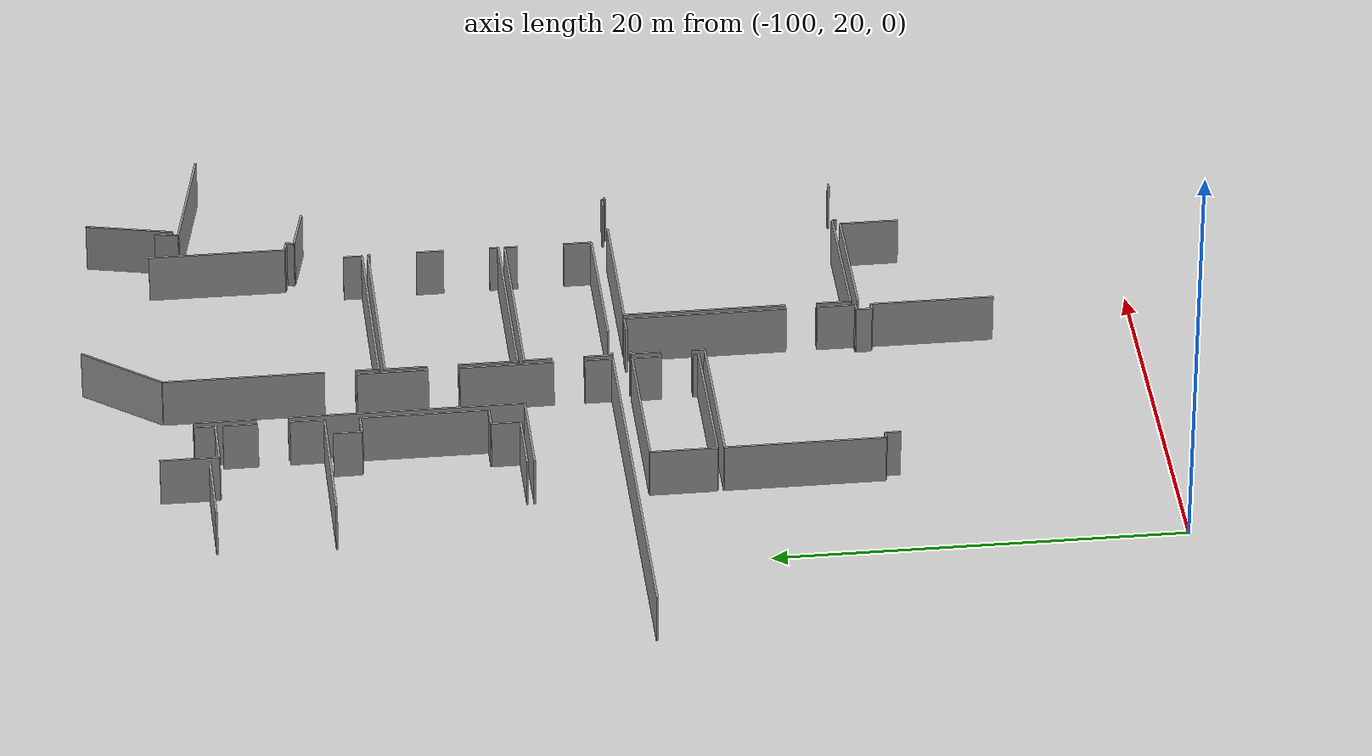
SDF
<sdf version="1.6">
 <world name="default">
  <model name="ground_plane">
   <static>1</static>
   <link name="link">
    <collision name="collision">
     <geometry><plane><normal>0 0 1</normal><size>100 100</size></plane></geometry>
     <surface><friction><ode><mu>100</mu><mu2>50</mu2></ode></friction></surface>
    </collision>
    <visual name="visual">
     <cast_shadows>0</cast_shadows>
     <geometry><plane><normal>0 0 1</normal><size>100 100</size></plane></geometry>
     <material>
      <script><uri>file://media/materials/scripts/gazebo.material</uri><name>Gazebo/Grey</name></script>
     </material>
    </visual>
   </link>
  </model>
  <model name="0510045922_A-40">
   <static>1</static>
   <link name="Wall_399">
    <collision name="Wall_399_Collision">
     <geometry><box><size>1.39289572345 0.1 2.5</size></box></geometry>
     <pose>0.696447861727 0 1.25 0 0 0</pose>
    </collision>
    <visual name="Wall_399_Visual">
     <pose>0.696447861727 0 1.25 0 0 0</pose>
     <geometry><box><size>1.39289572345 0.1 2.5</size></box></geometry>
     <material>
      <script><uri>file://media/materials/scripts/gazebo.material</uri><name>Gazebo/Grey</name></script>
      <ambient>1 1 1 1</ambient>
     </material>
    </visual>
    <pose>43.1490627184 -41.1134015378 0 0 0 -1.57079632679</pose>
   </link>
   <link name="Wall_400">
    <collision name="Wall_400_Collision">
     <geometry><box><size>1.17786109169 0.1 2.5</size></box></geometry>
     <pose>0.588930545847 0 1.25 0 0 0</pose>
    </collision>
    <visual name="Wall_400_Visual">
     <pose>0.588930545847 0 1.25 0 0 0</pose>
     <geometry><box><size>1.17786109169 0.1 2.5</size></box></geometry>
     <material>
      <script><uri>file://media/materials/scripts/gazebo.material</uri><name>Gazebo/Grey</name></script>
      <ambient>1 1 1 1</ambient>
     </material>
    </visual>
    <pose>43.1490627184 -42.5062972612 0 0 0 0.0</pose>
   </link>
   <link name="Wall_401">
    <collision name="Wall_401_Collision">
     <geometry><box><size>6.21312829637 0.1 2.5</size></box></geometry>
     <pose>3.10656414819 0 1.25 0 0 0</pose>
    </collision>
    <visual name="Wall_401_Visual">
     <pose>3.10656414819 0 1.25 0 0 0</pose>
     <geometry><box><size>6.21312829637 0.1 2.5</size></box></geometry>
     <material>
      <script><uri>file://media/materials/scripts/gazebo.material</uri><name>Gazebo/Grey</name></script>
      <ambient>1 1 1 1</ambient>
     </material>
    </visual>
    <pose>44.3269238101 -42.5062972612 0 0 0 -1.57079632679</pose>
   </link>
   <link name="Wall_402">
    <collision name="Wall_402_Collision">
     <geometry><box><size>1.15905191587 0.1 2.5</size></box></geometry>
     <pose>0.579525957934 0 1.25 0 0 0</pose>
    </collision>
    <visual name="Wall_402_Visual">
     <pose>0.579525957934 0 1.25 0 0 0</pose>
     <geometry><box><size>1.15905191587 0.1 2.5</size></box></geometry>
     <material>
      <script><uri>file://media/materials/scripts/gazebo.material</uri><name>Gazebo/Grey</name></script>
      <ambient>1 1 1 1</ambient>
     </material>
    </visual>
    <pose>44.3269238101 -48.7194255576 0 0 0 3.14159265359</pose>
   </link>
   <link name="Wall_403">
    <collision name="Wall_403_Collision">
     <geometry><box><size>1.41526339201 0.1 2.5</size></box></geometry>
     <pose>0.707631696003 0 1.25 0 0 0</pose>
    </collision>
    <visual name="Wall_403_Visual">
     <pose>0.707631696003 0 1.25 0 0 0</pose>
     <geometry><box><size>1.41526339201 0.1 2.5</size></box></geometry>
     <material>
      <script><uri>file://media/materials/scripts/gazebo.material</uri><name>Gazebo/Grey</name></script>
      <ambient>1 1 1 1</ambient>
     </material>
    </visual>
    <pose>43.1678718943 -48.7194255576 0 0 0 -1.57079632679</pose>
   </link>
   <link name="Wall_404">
    <collision name="Wall_404_Collision">
     <geometry><box><size>3.36760500731 0.1 2.5</size></box></geometry>
     <pose>1.68380250365 0 1.25 0 0 0</pose>
    </collision>
    <visual name="Wall_404_Visual">
     <pose>1.68380250365 0 1.25 0 0 0</pose>
     <geometry><box><size>3.36760500731 0.1 2.5</size></box></geometry>
     <material>
      <script><uri>file://media/materials/scripts/gazebo.material</uri><name>Gazebo/Grey</name></script>
      <ambient>1 1 1 1</ambient>
     </material>
    </visual>
    <pose>43.1678718943 -50.1346889496 0 0 0 3.14159265359</pose>
   </link>
   <link name="Wall_406">
    <collision name="Wall_406_Collision">
     <geometry><box><size>9.95208743725 0.1 2.5</size></box></geometry>
     <pose>4.97604371862 0 1.25 0 0 0</pose>
    </collision>
    <visual name="Wall_406_Visual">
     <pose>4.97604371862 0 1.25 0 0 0</pose>
     <geometry><box><size>9.95208743725 0.1 2.5</size></box></geometry>
     <material>
      <script><uri>file://media/materials/scripts/gazebo.material</uri><name>Gazebo/Grey</name></script>
      <ambient>1 1 1 1</ambient>
     </material>
    </visual>
    <pose>48.3500540128 -50.7970769524 0 0 0 0.0</pose>
   </link>
   <link name="Wall_407">
    <collision name="Wall_407_Collision">
     <geometry><box><size>0.636970197623 0.1 2.5</size></box></geometry>
     <pose>0.318485098812 0 1.25 0 0 0</pose>
    </collision>
    <visual name="Wall_407_Visual">
     <pose>0.318485098812 0 1.25 0 0 0</pose>
     <geometry><box><size>0.636970197623 0.1 2.5</size></box></geometry>
     <material>
      <script><uri>file://media/materials/scripts/gazebo.material</uri><name>Gazebo/Grey</name></script>
      <ambient>1 1 1 1</ambient>
     </material>
    </visual>
    <pose>58.3021414501 -50.7970769524 0 0 0 -1.57079632679</pose>
   </link>
   <link name="Wall_408">
    <collision name="Wall_408_Collision">
     <geometry><box><size>1.38018682087 0.1 2.5</size></box></geometry>
     <pose>0.690093410434 0 1.25 0 0 0</pose>
    </collision>
    <visual name="Wall_408_Visual">
     <pose>0.690093410434 0 1.25 0 0 0</pose>
     <geometry><box><size>1.38018682087 0.1 2.5</size></box></geometry>
     <material>
      <script><uri>file://media/materials/scripts/gazebo.material</uri><name>Gazebo/Grey</name></script>
      <ambient>1 1 1 1</ambient>
     </material>
    </visual>
    <pose>58.3021414501 -53.7249539302 0 0 0 -1.57079632679</pose>
   </link>
   <link name="Wall_409">
    <collision name="Wall_409_Collision">
     <geometry><box><size>7.9415390481 0.1 2.5</size></box></geometry>
     <pose>3.97076952405 0 1.25 0 0 0</pose>
    </collision>
    <visual name="Wall_409_Visual">
     <pose>3.97076952405 0 1.25 0 0 0</pose>
     <geometry><box><size>7.9415390481 0.1 2.5</size></box></geometry>
     <material>
      <script><uri>file://media/materials/scripts/gazebo.material</uri><name>Gazebo/Grey</name></script>
      <ambient>1 1 1 1</ambient>
     </material>
    </visual>
    <pose>58.3021414501 -55.1051407511 0 0 0 3.14159265359</pose>
   </link>
   <link name="Wall_410">
    <collision name="Wall_410_Collision">
     <geometry><box><size>0.191141894897 0.1 2.5</size></box></geometry>
     <pose>0.0955709474487 0 1.25 0 0 0</pose>
    </collision>
    <visual name="Wall_410_Visual">
     <pose>0.0955709474487 0 1.25 0 0 0</pose>
     <geometry><box><size>0.191141894897 0.1 2.5</size></box></geometry>
     <material>
      <script><uri>file://media/materials/scripts/gazebo.material</uri><name>Gazebo/Grey</name></script>
      <ambient>1 1 1 1</ambient>
     </material>
    </visual>
    <pose>48.5516172079 -55.1051407511 0 0 0 3.14159265359</pose>
   </link>
   <link name="Wall_411">
    <collision name="Wall_411_Collision">
     <geometry><box><size>1.38044099892 0.1 2.5</size></box></geometry>
     <pose>0.69022049946 0 1.25 0 0 0</pose>
    </collision>
    <visual name="Wall_411_Visual">
     <pose>0.69022049946 0 1.25 0 0 0</pose>
     <geometry><box><size>1.38044099892 0.1 2.5</size></box></geometry>
     <material>
      <script><uri>file://media/materials/scripts/gazebo.material</uri><name>Gazebo/Grey</name></script>
      <ambient>1 1 1 1</ambient>
     </material>
    </visual>
    <pose>48.360475313 -55.1051407511 0 0 0 1.57079632679</pose>
   </link>
   <link name="Wall_412">
    <collision name="Wall_412_Collision">
     <geometry><box><size>1.38251370144 0.1 2.5</size></box></geometry>
     <pose>0.69125685072 0 1.25 0 0 0</pose>
    </collision>
    <visual name="Wall_412_Visual">
     <pose>0.69125685072 0 1.25 0 0 0</pose>
     <geometry><box><size>1.38251370144 0.1 2.5</size></box></geometry>
     <material>
      <script><uri>file://media/materials/scripts/gazebo.material</uri><name>Gazebo/Grey</name></script>
      <ambient>1 1 1 1</ambient>
     </material>
    </visual>
    <pose>48.360475313 -52.1795513757 0 0 0 1.57833433441</pose>
   </link>
   <link name="Wall_413">
    <collision name="Wall_413_Collision">
     <geometry><box><size>2.89813814577 0.1 2.5</size></box></geometry>
     <pose>1.44906907289 0 1.25 0 0 0</pose>
    </collision>
    <visual name="Wall_413_Visual">
     <pose>1.44906907289 0 1.25 0 0 0</pose>
     <geometry><box><size>2.89813814577 0.1 2.5</size></box></geometry>
     <material>
      <script><uri>file://media/materials/scripts/gazebo.material</uri><name>Gazebo/Grey</name></script>
      <ambient>1 1 1 1</ambient>
     </material>
    </visual>
    <pose>48.3129440173 -50.4913007562 0 0 0 1.57079632679</pose>
   </link>
   <link name="Wall_414">
    <collision name="Wall_414_Collision">
     <geometry><box><size>2.0545211921 0.1 2.5</size></box></geometry>
     <pose>1.02726059605 0 1.25 0 0 0</pose>
    </collision>
    <visual name="Wall_414_Visual">
     <pose>1.02726059605 0 1.25 0 0 0</pose>
     <geometry><box><size>2.0545211921 0.1 2.5</size></box></geometry>
     <material>
      <script><uri>file://media/materials/scripts/gazebo.material</uri><name>Gazebo/Grey</name></script>
      <ambient>1 1 1 1</ambient>
     </material>
    </visual>
    <pose>48.3129440173 -46.0772447099 0 0 0 1.57079632679</pose>
   </link>
   <link name="Wall_415">
    <collision name="Wall_415_Collision">
     <geometry><box><size>10.0082607867 0.1 2.5</size></box></geometry>
     <pose>5.00413039334 0 1.25 0 0 0</pose>
    </collision>
    <visual name="Wall_415_Visual">
     <pose>5.00413039334 0 1.25 0 0 0</pose>
     <geometry><box><size>10.0082607867 0.1 2.5</size></box></geometry>
     <material>
      <script><uri>file://media/materials/scripts/gazebo.material</uri><name>Gazebo/Grey</name></script>
      <ambient>1 1 1 1</ambient>
     </material>
    </visual>
    <pose>48.3129440173 -44.0227235178 0 0 0 0.0</pose>
   </link>
   <link name="Wall_416">
    <collision name="Wall_416_Collision">
     <geometry><box><size>0.124293067294 0.1 2.5</size></box></geometry>
     <pose>0.0621465336468 0 1.25 0 0 0</pose>
    </collision>
    <visual name="Wall_416_Visual">
     <pose>0.0621465336468 0 1.25 0 0 0</pose>
     <geometry><box><size>0.124293067294 0.1 2.5</size></box></geometry>
     <material>
      <script><uri>file://media/materials/scripts/gazebo.material</uri><name>Gazebo/Grey</name></script>
      <ambient>1 1 1 1</ambient>
     </material>
    </visual>
    <pose>58.321204804 -44.0227235178 0 0 0 -1.57079632679</pose>
   </link>
   <link name="Wall_417">
    <collision name="Wall_417_Collision">
     <geometry><box><size>1.35222723518 0.1 2.5</size></box></geometry>
     <pose>0.676113617589 0 1.25 0 0 0</pose>
    </collision>
    <visual name="Wall_417_Visual">
     <pose>0.676113617589 0 1.25 0 0 0</pose>
     <geometry><box><size>1.35222723518 0.1 2.5</size></box></geometry>
     <material>
      <script><uri>file://media/materials/scripts/gazebo.material</uri><name>Gazebo/Grey</name></script>
      <ambient>1 1 1 1</ambient>
     </material>
    </visual>
    <pose>58.321204804 -46.4097096016 0 0 0 -1.57079632679</pose>
   </link>
   <link name="Wall_418">
    <collision name="Wall_418_Collision">
     <geometry><box><size>0.439473851433 0.1 2.5</size></box></geometry>
     <pose>0.219736925716 0 1.25 0 0 0</pose>
    </collision>
    <visual name="Wall_418_Visual">
     <pose>0.219736925716 0 1.25 0 0 0</pose>
     <geometry><box><size>0.439473851433 0.1 2.5</size></box></geometry>
     <material>
      <script><uri>file://media/materials/scripts/gazebo.material</uri><name>Gazebo/Grey</name></script>
      <ambient>1 1 1 1</ambient>
     </material>
    </visual>
    <pose>58.321204804 -50.0436932071 0 0 0 -1.57079632679</pose>
   </link>
   <link name="Wall_419">
    <collision name="Wall_419_Collision">
     <geometry><box><size>10.0082640918 0.1 2.5</size></box></geometry>
     <pose>5.0041320459 0 1.25 0 0 0</pose>
    </collision>
    <visual name="Wall_419_Visual">
     <pose>5.0041320459 0 1.25 0 0 0</pose>
     <geometry><box><size>10.0082640918 0.1 2.5</size></box></geometry>
     <material>
      <script><uri>file://media/materials/scripts/gazebo.material</uri><name>Gazebo/Grey</name></script>
      <ambient>1 1 1 1</ambient>
     </material>
    </visual>
    <pose>58.321204804 -50.4831670585 0 0 0 -3.14077995536</pose>
   </link>
   <link name="Wall_420">
    <collision name="Wall_420_Collision">
     <geometry><box><size>1.15218910847 0.1 2.5</size></box></geometry>
     <pose>0.576094554235 0 1.25 0 0 0</pose>
    </collision>
    <visual name="Wall_420_Visual">
     <pose>0.576094554235 0 1.25 0 0 0</pose>
     <geometry><box><size>1.15218910847 0.1 2.5</size></box></geometry>
     <material>
      <script><uri>file://media/materials/scripts/gazebo.material</uri><name>Gazebo/Grey</name></script>
      <ambient>1 1 1 1</ambient>
     </material>
    </visual>
    <pose>48.3386160005 -43.7416025926 0 0 0 1.57079632679</pose>
   </link>
   <link name="Wall_421">
    <collision name="Wall_421_Collision">
     <geometry><box><size>7.84342632014 0.1 2.5</size></box></geometry>
     <pose>3.92171316007 0 1.25 0 0 0</pose>
    </collision>
    <visual name="Wall_421_Visual">
     <pose>3.92171316007 0 1.25 0 0 0</pose>
     <geometry><box><size>7.84342632014 0.1 2.5</size></box></geometry>
     <material>
      <script><uri>file://media/materials/scripts/gazebo.material</uri><name>Gazebo/Grey</name></script>
      <ambient>1 1 1 1</ambient>
     </material>
    </visual>
    <pose>48.3386160005 -41.0943381839 0 0 0 1.57079632679</pose>
   </link>
   <link name="Wall_422">
    <collision name="Wall_422_Collision">
     <geometry><box><size>4.70770745064 0.1 2.5</size></box></geometry>
     <pose>2.35385372532 0 1.25 0 0 0</pose>
    </collision>
    <visual name="Wall_422_Visual">
     <pose>2.35385372532 0 1.25 0 0 0</pose>
     <geometry><box><size>4.70770745064 0.1 2.5</size></box></geometry>
     <material>
      <script><uri>file://media/materials/scripts/gazebo.material</uri><name>Gazebo/Grey</name></script>
      <ambient>1 1 1 1</ambient>
     </material>
    </visual>
    <pose>48.3386160005 -33.2509118638 0 0 0 0.918613212032</pose>
   </link>
   <link name="Wall_428">
    <collision name="Wall_428_Collision">
     <geometry><box><size>0.939442079176 0.1 2.5</size></box></geometry>
     <pose>0.469721039588 0 1.25 0 0 0</pose>
    </collision>
    <visual name="Wall_428_Visual">
     <pose>0.469721039588 0 1.25 0 0 0</pose>
     <geometry><box><size>0.939442079176 0.1 2.5</size></box></geometry>
     <material>
      <script><uri>file://media/materials/scripts/gazebo.material</uri><name>Gazebo/Grey</name></script>
      <ambient>1 1 1 1</ambient>
     </material>
    </visual>
    <pose>58.277232001 -42.7955518841 0 0 0 -1.57079632679</pose>
   </link>
   <link name="Wall_429">
    <collision name="Wall_429_Collision">
     <geometry><box><size>9.93861819769 0.1 2.5</size></box></geometry>
     <pose>4.96930909885 0 1.25 0 0 0</pose>
    </collision>
    <visual name="Wall_429_Visual">
     <pose>4.96930909885 0 1.25 0 0 0</pose>
     <geometry><box><size>9.93861819769 0.1 2.5</size></box></geometry>
     <material>
      <script><uri>file://media/materials/scripts/gazebo.material</uri><name>Gazebo/Grey</name></script>
      <ambient>1 1 1 1</ambient>
     </material>
    </visual>
    <pose>58.277232001 -43.7349939633 0 0 0 -3.14092770906</pose>
   </link>
   <link name="Wall_438">
    <collision name="Wall_438_Collision">
     <geometry><box><size>1.69358835865 0.1 2.5</size></box></geometry>
     <pose>0.846794179323 0 1.25 0 0 0</pose>
    </collision>
    <visual name="Wall_438_Visual">
     <pose>0.846794179323 0 1.25 0 0 0</pose>
     <geometry><box><size>1.69358835865 0.1 2.5</size></box></geometry>
     <material>
      <script><uri>file://media/materials/scripts/gazebo.material</uri><name>Gazebo/Grey</name></script>
      <ambient>1 1 1 1</ambient>
     </material>
    </visual>
    <pose>44.3447162737 -35.9017347652 0 0 0 -1.57079632679</pose>
   </link>
   <link name="Wall_439">
    <collision name="Wall_439_Collision">
     <geometry><box><size>1.66512041685 0.1 2.5</size></box></geometry>
     <pose>0.832560208426 0 1.25 0 0 0</pose>
    </collision>
    <visual name="Wall_439_Visual">
     <pose>0.832560208426 0 1.25 0 0 0</pose>
     <geometry><box><size>1.66512041685 0.1 2.5</size></box></geometry>
     <material>
      <script><uri>file://media/materials/scripts/gazebo.material</uri><name>Gazebo/Grey</name></script>
      <ambient>1 1 1 1</ambient>
     </material>
    </visual>
    <pose>44.3447162737 -39.1358962954 0 0 0 -1.57079632679</pose>
   </link>
   <link name="Wall_440">
    <collision name="Wall_440_Collision">
     <geometry><box><size>7.26262947195 0.1 2.5</size></box></geometry>
     <pose>3.63131473597 0 1.25 0 0 0</pose>
    </collision>
    <visual name="Wall_440_Visual">
     <pose>3.63131473597 0 1.25 0 0 0</pose>
     <geometry><box><size>7.26262947195 0.1 2.5</size></box></geometry>
     <material>
      <script><uri>file://media/materials/scripts/gazebo.material</uri><name>Gazebo/Grey</name></script>
      <ambient>1 1 1 1</ambient>
     </material>
    </visual>
    <pose>44.3447162737 -40.8010167122 0 0 0 3.14159265359</pose>
   </link>
   <link name="Wall_447">
    <collision name="Wall_447_Collision">
     <geometry><box><size>2.84679417932 0.1 2.5</size></box></geometry>
     <pose>1.42339708966 0 1.25 0 0 0</pose>
    </collision>
    <visual name="Wall_447_Visual">
     <pose>1.42339708966 0 1.25 0 0 0</pose>
     <geometry><box><size>2.84679417932 0.1 2.5</size></box></geometry>
     <material>
      <script><uri>file://media/materials/scripts/gazebo.material</uri><name>Gazebo/Grey</name></script>
      <ambient>1 1 1 1</ambient>
     </material>
    </visual>
    <pose>41.7493041876 -35.5687615174 0 0 0 1.57079632679</pose>
   </link>
   <link name="Wall_450">
    <collision name="Wall_450_Collision">
     <geometry><box><size>1.02433754845 0.1 2.5</size></box></geometry>
     <pose>0.512168774226 0 1.25 0 0 0</pose>
    </collision>
    <visual name="Wall_450_Visual">
     <pose>0.512168774226 0 1.25 0 0 0</pose>
     <geometry><box><size>1.02433754845 0.1 2.5</size></box></geometry>
     <material>
      <script><uri>file://media/materials/scripts/gazebo.material</uri><name>Gazebo/Grey</name></script>
      <ambient>1 1 1 1</ambient>
     </material>
    </visual>
    <pose>44.345987164 -34.5357819152 0 0 0 -1.57079632679</pose>
   </link>
   <link name="Wall_451">
    <collision name="Wall_451_Collision">
     <geometry><box><size>2.59669735725 0.1 2.5</size></box></geometry>
     <pose>1.29834867862 0 1.25 0 0 0</pose>
    </collision>
    <visual name="Wall_451_Visual">
     <pose>1.29834867862 0 1.25 0 0 0</pose>
     <geometry><box><size>2.59669735725 0.1 2.5</size></box></geometry>
     <material>
      <script><uri>file://media/materials/scripts/gazebo.material</uri><name>Gazebo/Grey</name></script>
      <ambient>1 1 1 1</ambient>
     </material>
    </visual>
    <pose>44.345987164 -35.5601194637 0 0 0 -3.13826455311</pose>
   </link>
   <link name="Wall_457">
    <collision name="Wall_457_Collision">
     <geometry><box><size>4.1355401722 0.1 2.5</size></box></geometry>
     <pose>2.0677700861 0 1.25 0 0 0</pose>
    </collision>
    <visual name="Wall_457_Visual">
     <pose>2.0677700861 0 1.25 0 0 0</pose>
     <geometry><box><size>4.1355401722 0.1 2.5</size></box></geometry>
     <material>
      <script><uri>file://media/materials/scripts/gazebo.material</uri><name>Gazebo/Grey</name></script>
      <ambient>1 1 1 1</ambient>
     </material>
    </visual>
    <pose>41.4196352545 -35.1015822584 0 0 0 -3.13606105666</pose>
   </link>
   <link name="Wall_495">
    <collision name="Wall_495_Collision">
     <geometry><box><size>4.86852640275 0.1 2.5</size></box></geometry>
     <pose>2.43426320137 0 1.25 0 0 0</pose>
    </collision>
    <visual name="Wall_495_Visual">
     <pose>2.43426320137 0 1.25 0 0 0</pose>
     <geometry><box><size>4.86852640275 0.1 2.5</size></box></geometry>
     <material>
      <script><uri>file://media/materials/scripts/gazebo.material</uri><name>Gazebo/Grey</name></script>
      <ambient>1 1 1 1</ambient>
     </material>
    </visual>
    <pose>39.8422062655 -50.4831670585 0 0 0 0.0</pose>
   </link>
   <link name="Wall_496">
    <collision name="Wall_496_Collision">
     <geometry><box><size>11.4146279469 0.1 2.5</size></box></geometry>
     <pose>5.70731397344 0 1.25 0 0 0</pose>
    </collision>
    <visual name="Wall_496_Visual">
     <pose>5.70731397344 0 1.25 0 0 0</pose>
     <geometry><box><size>11.4146279469 0.1 2.5</size></box></geometry>
     <material>
      <script><uri>file://media/materials/scripts/gazebo.material</uri><name>Gazebo/Grey</name></script>
      <ambient>1 1 1 1</ambient>
     </material>
    </visual>
    <pose>44.7107326682 -50.4831670585 0 0 0 1.57079632679</pose>
   </link>
   <link name="Wall_497">
    <collision name="Wall_497_Collision">
     <geometry><box><size>3.05877867446 0.1 2.5</size></box></geometry>
     <pose>1.52938933723 0 1.25 0 0 0</pose>
    </collision>
    <visual name="Wall_497_Visual">
     <pose>1.52938933723 0 1.25 0 0 0</pose>
     <geometry><box><size>3.05877867446 0.1 2.5</size></box></geometry>
     <material>
      <script><uri>file://media/materials/scripts/gazebo.material</uri><name>Gazebo/Grey</name></script>
      <ambient>1 1 1 1</ambient>
     </material>
    </visual>
    <pose>44.7107326682 -37.5638050454 0 0 0 1.57079632679</pose>
   </link>
   <link name="Wall_508">
    <collision name="Wall_508_Collision">
     <geometry><box><size>3.46876787189 0.1 2.5</size></box></geometry>
     <pose>1.73438393595 0 1.25 0 0 0</pose>
    </collision>
    <visual name="Wall_508_Visual">
     <pose>1.73438393595 0 1.25 0 0 0</pose>
     <geometry><box><size>3.46876787189 0.1 2.5</size></box></geometry>
     <material>
      <script><uri>file://media/materials/scripts/gazebo.material</uri><name>Gazebo/Grey</name></script>
      <ambient>1 1 1 1</ambient>
     </material>
    </visual>
    <pose>48.0374150092 -42.6542288873 0 0 0 -1.57079632679</pose>
   </link>
   <link name="Wall_509">
    <collision name="Wall_509_Collision">
     <geometry><box><size>4.58435534092 0.1 2.5</size></box></geometry>
     <pose>2.29217767046 0 1.25 0 0 0</pose>
    </collision>
    <visual name="Wall_509_Visual">
     <pose>2.29217767046 0 1.25 0 0 0</pose>
     <geometry><box><size>4.58435534092 0.1 2.5</size></box></geometry>
     <material>
      <script><uri>file://media/materials/scripts/gazebo.material</uri><name>Gazebo/Grey</name></script>
      <ambient>1 1 1 1</ambient>
     </material>
    </visual>
    <pose>48.0374150092 -47.6457774671 0 0 0 -1.57079632679</pose>
   </link>
   <link name="Wall_510">
    <collision name="Wall_510_Collision">
     <geometry><box><size>1.36366524751 0.1 2.5</size></box></geometry>
     <pose>0.681832623753 0 1.25 0 0 0</pose>
    </collision>
    <visual name="Wall_510_Visual">
     <pose>0.681832623753 0 1.25 0 0 0</pose>
     <geometry><box><size>1.36366524751 0.1 2.5</size></box></geometry>
     <material>
      <script><uri>file://media/materials/scripts/gazebo.material</uri><name>Gazebo/Grey</name></script>
      <ambient>1 1 1 1</ambient>
     </material>
    </visual>
    <pose>48.0374150092 -53.7252081083 0 0 0 -1.57079632679</pose>
   </link>
   <link name="Wall_511">
    <collision name="Wall_511_Collision">
     <geometry><box><size>19.8253796785 0.1 2.5</size></box></geometry>
     <pose>9.91268983923 0 1.25 0 0 0</pose>
    </collision>
    <visual name="Wall_511_Visual">
     <pose>9.91268983923 0 1.25 0 0 0</pose>
     <geometry><box><size>19.8253796785 0.1 2.5</size></box></geometry>
     <material>
      <script><uri>file://media/materials/scripts/gazebo.material</uri><name>Gazebo/Grey</name></script>
      <ambient>1 1 1 1</ambient>
     </material>
    </visual>
    <pose>48.0374150092 -55.0888733558 0 0 0 3.14159265359</pose>
   </link>
   <link name="Wall_607">
    <collision name="Wall_607_Collision">
     <geometry><box><size>0.756179703883 0.1 2.5</size></box></geometry>
     <pose>0.378089851941 0 1.25 0 0 0</pose>
    </collision>
    <visual name="Wall_607_Visual">
     <pose>0.378089851941 0 1.25 0 0 0</pose>
     <geometry><box><size>0.756179703883 0.1 2.5</size></box></geometry>
     <material>
      <script><uri>file://media/materials/scripts/gazebo.material</uri><name>Gazebo/Grey</name></script>
      <ambient>1 1 1 1</ambient>
     </material>
    </visual>
    <pose>40.4257990723 -68.1587087755 0 0 0 1.57079632679</pose>
   </link>
   <link name="Wall_608">
    <collision name="Wall_608_Collision">
     <geometry><box><size>0.406939060812 0.1 2.5</size></box></geometry>
     <pose>0.203469530406 0 1.25 0 0 0</pose>
    </collision>
    <visual name="Wall_608_Visual">
     <pose>0.203469530406 0 1.25 0 0 0</pose>
     <geometry><box><size>0.406939060812 0.1 2.5</size></box></geometry>
     <material>
      <script><uri>file://media/materials/scripts/gazebo.material</uri><name>Gazebo/Grey</name></script>
      <ambient>1 1 1 1</ambient>
     </material>
    </visual>
    <pose>40.4257990723 -67.4025290716 0 0 0 3.14159265359</pose>
   </link>
   <link name="Wall_609">
    <collision name="Wall_609_Collision">
     <geometry><box><size>7.79055728538 0.1 2.5</size></box></geometry>
     <pose>3.89527864269 0 1.25 0 0 0</pose>
    </collision>
    <visual name="Wall_609_Visual">
     <pose>3.89527864269 0 1.25 0 0 0</pose>
     <geometry><box><size>7.79055728538 0.1 2.5</size></box></geometry>
     <material>
      <script><uri>file://media/materials/scripts/gazebo.material</uri><name>Gazebo/Grey</name></script>
      <ambient>1 1 1 1</ambient>
     </material>
    </visual>
    <pose>40.0188600114 -67.4025290716 0 0 0 1.57079632679</pose>
   </link>
   <link name="Wall_610">
    <collision name="Wall_610_Collision">
     <geometry><box><size>8.34771557476 0.1 2.5</size></box></geometry>
     <pose>4.17385778738 0 1.25 0 0 0</pose>
    </collision>
    <visual name="Wall_610_Visual">
     <pose>4.17385778738 0 1.25 0 0 0</pose>
     <geometry><box><size>8.34771557476 0.1 2.5</size></box></geometry>
     <material>
      <script><uri>file://media/materials/scripts/gazebo.material</uri><name>Gazebo/Grey</name></script>
      <ambient>1 1 1 1</ambient>
     </material>
    </visual>
    <pose>40.0188600114 -59.6119717862 0 0 0 0.0</pose>
   </link>
   <link name="Wall_611">
    <collision name="Wall_611_Collision">
     <geometry><box><size>0.649170744106 0.1 2.5</size></box></geometry>
     <pose>0.324585372053 0 1.25 0 0 0</pose>
    </collision>
    <visual name="Wall_611_Visual">
     <pose>0.324585372053 0 1.25 0 0 0</pose>
     <geometry><box><size>0.649170744106 0.1 2.5</size></box></geometry>
     <material>
      <script><uri>file://media/materials/scripts/gazebo.material</uri><name>Gazebo/Grey</name></script>
      <ambient>1 1 1 1</ambient>
     </material>
    </visual>
    <pose>48.3665755862 -59.6119717862 0 0 0 1.57079632679</pose>
   </link>
   <link name="Wall_612">
    <collision name="Wall_612_Collision">
     <geometry><box><size>1.43610599225 0.1 2.5</size></box></geometry>
     <pose>0.718052996124 0 1.25 0 0 0</pose>
    </collision>
    <visual name="Wall_612_Visual">
     <pose>0.718052996124 0 1.25 0 0 0</pose>
     <geometry><box><size>1.43610599225 0.1 2.5</size></box></geometry>
     <material>
      <script><uri>file://media/materials/scripts/gazebo.material</uri><name>Gazebo/Grey</name></script>
      <ambient>1 1 1 1</ambient>
     </material>
    </visual>
    <pose>48.3665755862 -57.4468831416 0 0 0 1.57079632679</pose>
   </link>
   <link name="Wall_613">
    <collision name="Wall_613_Collision">
     <geometry><box><size>0.22393086357 0.1 2.5</size></box></geometry>
     <pose>0.111965431785 0 1.25 0 0 0</pose>
    </collision>
    <visual name="Wall_613_Visual">
     <pose>0.111965431785 0 1.25 0 0 0</pose>
     <geometry><box><size>0.22393086357 0.1 2.5</size></box></geometry>
     <material>
      <script><uri>file://media/materials/scripts/gazebo.material</uri><name>Gazebo/Grey</name></script>
      <ambient>1 1 1 1</ambient>
     </material>
    </visual>
    <pose>48.3665755862 -56.0107771494 0 0 0 0.0</pose>
   </link>
   <link name="Wall_614">
    <collision name="Wall_614_Collision">
     <geometry><box><size>1.0162038508 0.1 2.5</size></box></geometry>
     <pose>0.508101925399 0 1.25 0 0 0</pose>
    </collision>
    <visual name="Wall_614_Visual">
     <pose>0.508101925399 0 1.25 0 0 0</pose>
     <geometry><box><size>1.0162038508 0.1 2.5</size></box></geometry>
     <material>
      <script><uri>file://media/materials/scripts/gazebo.material</uri><name>Gazebo/Grey</name></script>
      <ambient>1 1 1 1</ambient>
     </material>
    </visual>
    <pose>50.4254178052 -56.0107771494 0 0 0 0.0</pose>
   </link>
   <link name="Wall_615">
    <collision name="Wall_615_Collision">
     <geometry><box><size>7.97432801678 0.1 2.5</size></box></geometry>
     <pose>3.98716400839 0 1.25 0 0 0</pose>
    </collision>
    <visual name="Wall_615_Visual">
     <pose>3.98716400839 0 1.25 0 0 0</pose>
     <geometry><box><size>7.97432801678 0.1 2.5</size></box></geometry>
     <material>
      <script><uri>file://media/materials/scripts/gazebo.material</uri><name>Gazebo/Grey</name></script>
      <ambient>1 1 1 1</ambient>
     </material>
    </visual>
    <pose>51.441621656 -56.0107771494 0 0 0 -1.57079632679</pose>
   </link>
   <link name="Wall_616">
    <collision name="Wall_616_Collision">
     <geometry><box><size>1.88473025354 0.1 2.5</size></box></geometry>
     <pose>0.942365126771 0 1.25 0 0 0</pose>
    </collision>
    <visual name="Wall_616_Visual">
     <pose>0.942365126771 0 1.25 0 0 0</pose>
     <geometry><box><size>1.88473025354 0.1 2.5</size></box></geometry>
     <material>
      <script><uri>file://media/materials/scripts/gazebo.material</uri><name>Gazebo/Grey</name></script>
      <ambient>1 1 1 1</ambient>
     </material>
    </visual>
    <pose>51.441621656 -65.4913643007 0 0 0 -1.57079632679</pose>
   </link>
   <link name="Wall_617">
    <collision name="Wall_617_Collision">
     <geometry><box><size>0.410751731588 0.1 2.5</size></box></geometry>
     <pose>0.205375865794 0 1.25 0 0 0</pose>
    </collision>
    <visual name="Wall_617_Visual">
     <pose>0.205375865794 0 1.25 0 0 0</pose>
     <geometry><box><size>0.410751731588 0.1 2.5</size></box></geometry>
     <material>
      <script><uri>file://media/materials/scripts/gazebo.material</uri><name>Gazebo/Grey</name></script>
      <ambient>1 1 1 1</ambient>
     </material>
    </visual>
    <pose>51.441621656 -67.3760945542 0 0 0 3.14159265359</pose>
   </link>
   <link name="Wall_618">
    <collision name="Wall_618_Collision">
     <geometry><box><size>0.7660926479 0.1 2.5</size></box></geometry>
     <pose>0.38304632395 0 1.25 0 0 0</pose>
    </collision>
    <visual name="Wall_618_Visual">
     <pose>0.38304632395 0 1.25 0 0 0</pose>
     <geometry><box><size>0.7660926479 0.1 2.5</size></box></geometry>
     <material>
      <script><uri>file://media/materials/scripts/gazebo.material</uri><name>Gazebo/Grey</name></script>
      <ambient>1 1 1 1</ambient>
     </material>
    </visual>
    <pose>51.0308699244 -67.3760945542 0 0 0 -1.57079632679</pose>
   </link>
   <link name="Wall_619">
    <collision name="Wall_619_Collision">
     <geometry><box><size>0.397534472898 0.1 2.5</size></box></geometry>
     <pose>0.198767236449 0 1.25 0 0 0</pose>
    </collision>
    <visual name="Wall_619_Visual">
     <pose>0.198767236449 0 1.25 0 0 0</pose>
     <geometry><box><size>0.397534472898 0.1 2.5</size></box></geometry>
     <material>
      <script><uri>file://media/materials/scripts/gazebo.material</uri><name>Gazebo/Grey</name></script>
      <ambient>1 1 1 1</ambient>
     </material>
    </visual>
    <pose>51.0308699244 -68.1421872021 0 0 0 0.0</pose>
   </link>
   <link name="Wall_620">
    <collision name="Wall_620_Collision">
     <geometry><box><size>6.04054139925 0.1 2.5</size></box></geometry>
     <pose>3.02027069963 0 1.25 0 0 0</pose>
    </collision>
    <visual name="Wall_620_Visual">
     <pose>3.02027069963 0 1.25 0 0 0</pose>
     <geometry><box><size>6.04054139925 0.1 2.5</size></box></geometry>
     <material>
      <script><uri>file://media/materials/scripts/gazebo.material</uri><name>Gazebo/Grey</name></script>
      <ambient>1 1 1 1</ambient>
     </material>
    </visual>
    <pose>51.4284043973 -68.1421872021 0 0 0 -1.57079632679</pose>
   </link>
   <link name="Wall_628">
    <collision name="Wall_628_Collision">
     <geometry><box><size>3.24941221326 0.1 2.5</size></box></geometry>
     <pose>1.62470610663 0 1.25 0 0 0</pose>
    </collision>
    <visual name="Wall_628_Visual">
     <pose>1.62470610663 0 1.25 0 0 0</pose>
     <geometry><box><size>3.24941221326 0.1 2.5</size></box></geometry>
     <material>
      <script><uri>file://media/materials/scripts/gazebo.material</uri><name>Gazebo/Grey</name></script>
      <ambient>1 1 1 1</ambient>
     </material>
    </visual>
    <pose>39.9997966576 -59.2774734702 0 0 0 1.57079632679</pose>
   </link>
   <link name="Wall_629">
    <collision name="Wall_629_Collision">
     <geometry><box><size>7.99644150728 0.1 2.5</size></box></geometry>
     <pose>3.99822075364 0 1.25 0 0 0</pose>
    </collision>
    <visual name="Wall_629_Visual">
     <pose>3.99822075364 0 1.25 0 0 0</pose>
     <geometry><box><size>7.99644150728 0.1 2.5</size></box></geometry>
     <material>
      <script><uri>file://media/materials/scripts/gazebo.material</uri><name>Gazebo/Grey</name></script>
      <ambient>1 1 1 1</ambient>
     </material>
    </visual>
    <pose>39.9997966576 -56.0280612569 0 0 0 0.0</pose>
   </link>
   <link name="Wall_630">
    <collision name="Wall_630_Collision">
     <geometry><box><size>1.4511024973 0.1 2.5</size></box></geometry>
     <pose>0.72555124865 0 1.25 0 0 0</pose>
    </collision>
    <visual name="Wall_630_Visual">
     <pose>0.72555124865 0 1.25 0 0 0</pose>
     <geometry><box><size>1.4511024973 0.1 2.5</size></box></geometry>
     <material>
      <script><uri>file://media/materials/scripts/gazebo.material</uri><name>Gazebo/Grey</name></script>
      <ambient>1 1 1 1</ambient>
     </material>
    </visual>
    <pose>47.9962381648 -56.0280612569 0 0 0 -1.57079632679</pose>
   </link>
   <link name="Wall_631">
    <collision name="Wall_631_Collision">
     <geometry><box><size>0.278579144691 0.1 2.5</size></box></geometry>
     <pose>0.139289572345 0 1.25 0 0 0</pose>
    </collision>
    <visual name="Wall_631_Visual">
     <pose>0.139289572345 0 1.25 0 0 0</pose>
     <geometry><box><size>0.278579144691 0.1 2.5</size></box></geometry>
     <material>
      <script><uri>file://media/materials/scripts/gazebo.material</uri><name>Gazebo/Grey</name></script>
      <ambient>1 1 1 1</ambient>
     </material>
    </visual>
    <pose>47.9962381648 -58.9897439156 0 0 0 -1.57079632679</pose>
   </link>
   <link name="Wall_632">
    <collision name="Wall_632_Collision">
     <geometry><box><size>7.99644674273 0.1 2.5</size></box></geometry>
     <pose>3.99822337136 0 1.25 0 0 0</pose>
    </collision>
    <visual name="Wall_632_Visual">
     <pose>3.99822337136 0 1.25 0 0 0</pose>
     <geometry><box><size>7.99644674273 0.1 2.5</size></box></geometry>
     <material>
      <script><uri>file://media/materials/scripts/gazebo.material</uri><name>Gazebo/Grey</name></script>
      <ambient>1 1 1 1</ambient>
     </material>
    </visual>
    <pose>47.9962381648 -59.2683230603 0 0 0 -3.14044834385</pose>
   </link>
   <link name="Wall_634">
    <collision name="Wall_634_Collision">
     <geometry><box><size>6.88492088708 0.1 2.5</size></box></geometry>
     <pose>3.44246044354 0 1.25 0 0 0</pose>
    </collision>
    <visual name="Wall_634_Visual">
     <pose>3.44246044354 0 1.25 0 0 0</pose>
     <geometry><box><size>6.88492088708 0.1 2.5</size></box></geometry>
     <material>
      <script><uri>file://media/materials/scripts/gazebo.material</uri><name>Gazebo/Grey</name></script>
      <ambient>1 1 1 1</ambient>
     </material>
    </visual>
    <pose>51.7804409989 -67.5448687806 0 0 0 0.0</pose>
   </link>
   <link name="Wall_635">
    <collision name="Wall_635_Collision">
     <geometry><box><size>2.8948338311 0.1 2.5</size></box></geometry>
     <pose>1.44741691555 0 1.25 0 0 0</pose>
    </collision>
    <visual name="Wall_635_Visual">
     <pose>1.44741691555 0 1.25 0 0 0</pose>
     <geometry><box><size>2.8948338311 0.1 2.5</size></box></geometry>
     <material>
      <script><uri>file://media/materials/scripts/gazebo.material</uri><name>Gazebo/Grey</name></script>
      <ambient>1 1 1 1</ambient>
     </material>
    </visual>
    <pose>58.665361886 -67.5448687806 0 0 0 -1.57079632679</pose>
   </link>
   <link name="Wall_654">
    <collision name="Wall_654_Collision">
     <geometry><box><size>1.71316006863 0.1 2.5</size></box></geometry>
     <pose>0.856580034314 0 1.25 0 0 0</pose>
    </collision>
    <visual name="Wall_654_Visual">
     <pose>0.856580034314 0 1.25 0 0 0</pose>
     <geometry><box><size>1.71316006863 0.1 2.5</size></box></geometry>
     <material>
      <script><uri>file://media/materials/scripts/gazebo.material</uri><name>Gazebo/Grey</name></script>
      <ambient>1 1 1 1</ambient>
     </material>
    </visual>
    <pose>51.7672237402 -67.1935947131 0 0 0 1.57079632679</pose>
   </link>
   <link name="Wall_655">
    <collision name="Wall_655_Collision">
     <geometry><box><size>7.93798055538 0.1 2.5</size></box></geometry>
     <pose>3.96899027769 0 1.25 0 0 0</pose>
    </collision>
    <visual name="Wall_655_Visual">
     <pose>3.96899027769 0 1.25 0 0 0</pose>
     <geometry><box><size>7.93798055538 0.1 2.5</size></box></geometry>
     <material>
      <script><uri>file://media/materials/scripts/gazebo.material</uri><name>Gazebo/Grey</name></script>
      <ambient>1 1 1 1</ambient>
     </material>
    </visual>
    <pose>51.7672237402 -63.9624833196 0 0 0 1.57079632679</pose>
   </link>
   <link name="Wall_656">
    <collision name="Wall_656_Collision">
     <geometry><box><size>7.68939442079 0.1 2.5</size></box></geometry>
     <pose>3.8446972104 0 1.25 0 0 0</pose>
    </collision>
    <visual name="Wall_656_Visual">
     <pose>3.8446972104 0 1.25 0 0 0</pose>
     <geometry><box><size>7.68939442079 0.1 2.5</size></box></geometry>
     <material>
      <script><uri>file://media/materials/scripts/gazebo.material</uri><name>Gazebo/Grey</name></script>
      <ambient>1 1 1 1</ambient>
     </material>
    </visual>
    <pose>51.7672237402 -56.0245027642 0 0 0 0.0</pose>
   </link>
   <link name="Wall_657">
    <collision name="Wall_657_Collision">
     <geometry><box><size>0.54953294783 0.1 2.5</size></box></geometry>
     <pose>0.274766473915 0 1.25 0 0 0</pose>
    </collision>
    <visual name="Wall_657_Visual">
     <pose>0.274766473915 0 1.25 0 0 0</pose>
     <geometry><box><size>0.54953294783 0.1 2.5</size></box></geometry>
     <material>
      <script><uri>file://media/materials/scripts/gazebo.material</uri><name>Gazebo/Grey</name></script>
      <ambient>1 1 1 1</ambient>
     </material>
    </visual>
    <pose>61.500972231 -56.0245027642 0 0 0 0.0</pose>
   </link>
   <link name="Wall_658">
    <collision name="Wall_658_Collision">
     <geometry><box><size>0.125055601449 0.1 2.5</size></box></geometry>
     <pose>0.0625278007244 0 1.25 0 0 0</pose>
    </collision>
    <visual name="Wall_658_Visual">
     <pose>0.0625278007244 0 1.25 0 0 0</pose>
     <geometry><box><size>0.125055601449 0.1 2.5</size></box></geometry>
     <material>
      <script><uri>file://media/materials/scripts/gazebo.material</uri><name>Gazebo/Grey</name></script>
      <ambient>1 1 1 1</ambient>
     </material>
    </visual>
    <pose>62.0505051789 -56.0245027642 0 0 0 -1.57079632679</pose>
   </link>
   <link name="Wall_659">
    <collision name="Wall_659_Collision">
     <geometry><box><size>0.235368875898 0.1 2.5</size></box></geometry>
     <pose>0.117684437949 0 1.25 0 0 0</pose>
    </collision>
    <visual name="Wall_659_Visual">
     <pose>0.117684437949 0 1.25 0 0 0</pose>
     <geometry><box><size>0.235368875898 0.1 2.5</size></box></geometry>
     <material>
      <script><uri>file://media/materials/scripts/gazebo.material</uri><name>Gazebo/Grey</name></script>
      <ambient>1 1 1 1</ambient>
     </material>
    </visual>
    <pose>62.0505051789 -56.1495583656 0 0 0 0.0</pose>
   </link>
   <link name="Wall_662">
    <collision name="Wall_662_Collision">
     <geometry><box><size>0.250619559001 0.1 2.5</size></box></geometry>
     <pose>0.125309779501 0 1.25 0 0 0</pose>
    </collision>
    <visual name="Wall_662_Visual">
     <pose>0.125309779501 0 1.25 0 0 0</pose>
     <geometry><box><size>0.250619559001 0.1 2.5</size></box></geometry>
     <material>
      <script><uri>file://media/materials/scripts/gazebo.material</uri><name>Gazebo/Grey</name></script>
      <ambient>1 1 1 1</ambient>
     </material>
    </visual>
    <pose>62.2858740548 -67.3979538667 0 0 0 3.14159265359</pose>
   </link>
   <link name="Wall_663">
    <collision name="Wall_663_Collision">
     <geometry><box><size>0.205884221897 0.1 2.5</size></box></geometry>
     <pose>0.102942110949 0 1.25 0 0 0</pose>
    </collision>
    <visual name="Wall_663_Visual">
     <pose>0.102942110949 0 1.25 0 0 0</pose>
     <geometry><box><size>0.205884221897 0.1 2.5</size></box></geometry>
     <material>
      <script><uri>file://media/materials/scripts/gazebo.material</uri><name>Gazebo/Grey</name></script>
      <ambient>1 1 1 1</ambient>
     </material>
    </visual>
    <pose>59.0100273241 -67.3979538667 0 0 0 1.57079632679</pose>
   </link>
   <link name="Wall_664">
    <collision name="Wall_664_Collision">
     <geometry><box><size>7.24280374447 0.1 2.5</size></box></geometry>
     <pose>3.62140187224 0 1.25 0 0 0</pose>
    </collision>
    <visual name="Wall_664_Visual">
     <pose>3.62140187224 0 1.25 0 0 0</pose>
     <geometry><box><size>7.24280374447 0.1 2.5</size></box></geometry>
     <material>
      <script><uri>file://media/materials/scripts/gazebo.material</uri><name>Gazebo/Grey</name></script>
      <ambient>1 1 1 1</ambient>
     </material>
    </visual>
    <pose>59.0100273241 -67.1920696448 0 0 0 -3.14138209034</pose>
   </link>
   <link name="Wall_762">
    <collision name="Wall_762_Collision">
     <geometry><box><size>4.36504283446 0.1 2.5</size></box></geometry>
     <pose>2.18252141723 0 1.25 0 0 0</pose>
    </collision>
    <visual name="Wall_762_Visual">
     <pose>2.18252141723 0 1.25 0 0 0</pose>
     <geometry><box><size>4.36504283446 0.1 2.5</size></box></geometry>
     <material>
      <script><uri>file://media/materials/scripts/gazebo.material</uri><name>Gazebo/Grey</name></script>
      <ambient>1 1 1 1</ambient>
     </material>
    </visual>
    <pose>61.4203977887 -34.593734511 0 0 0 1.35531063529</pose>
   </link>
   <link name="Wall_770">
    <collision name="Wall_770_Collision">
     <geometry><box><size>6.71743786847 0.1 2.5</size></box></geometry>
     <pose>3.35871893424 0 1.25 0 0 0</pose>
    </collision>
    <visual name="Wall_770_Visual">
     <pose>3.35871893424 0 1.25 0 0 0</pose>
     <geometry><box><size>6.71743786847 0.1 2.5</size></box></geometry>
     <material>
      <script><uri>file://media/materials/scripts/gazebo.material</uri><name>Gazebo/Grey</name></script>
      <ambient>1 1 1 1</ambient>
     </material>
    </visual>
    <pose>59.220740929 -39.9683294148 0 0 0 1.56833681912</pose>
   </link>
   <link name="Wall_772">
    <collision name="Wall_772_Collision">
     <geometry><box><size>1.16995683323 0.1 2.5</size></box></geometry>
     <pose>0.584978416616 0 1.25 0 0 0</pose>
    </collision>
    <visual name="Wall_772_Visual">
     <pose>0.584978416616 0 1.25 0 0 0</pose>
     <geometry><box><size>1.16995683323 0.1 2.5</size></box></geometry>
     <material>
      <script><uri>file://media/materials/scripts/gazebo.material</uri><name>Gazebo/Grey</name></script>
      <ambient>1 1 1 1</ambient>
     </material>
    </visual>
    <pose>61.3027133507 -33.6723390735 0 0 0 -1.75144653078</pose>
   </link>
   <link name="Wall_773">
    <collision name="Wall_773_Collision">
     <geometry><box><size>6.53717526827 0.1 2.5</size></box></geometry>
     <pose>3.26858763413 0 1.25 0 0 0</pose>
    </collision>
    <visual name="Wall_773_Visual">
     <pose>3.26858763413 0 1.25 0 0 0</pose>
     <geometry><box><size>6.53717526827 0.1 2.5</size></box></geometry>
     <material>
      <script><uri>file://media/materials/scripts/gazebo.material</uri><name>Gazebo/Grey</name></script>
      <ambient>1 1 1 1</ambient>
     </material>
    </visual>
    <pose>61.0925081019 -34.8232572917 0 0 0 -0.196289880155</pose>
   </link>
   <link name="Wall_775">
    <collision name="Wall_775_Collision">
     <geometry><box><size>2.58290911187 0.1 2.5</size></box></geometry>
     <pose>1.29145455594 0 1.25 0 0 0</pose>
    </collision>
    <visual name="Wall_775_Visual">
     <pose>1.29145455594 0 1.25 0 0 0</pose>
     <geometry><box><size>2.58290911187 0.1 2.5</size></box></geometry>
     <material>
      <script><uri>file://media/materials/scripts/gazebo.material</uri><name>Gazebo/Grey</name></script>
      <ambient>1 1 1 1</ambient>
     </material>
    </visual>
    <pose>62.2678274131 -41.0224057953 0 0 0 2.92528262187</pose>
   </link>
   <link name="Wall_776">
    <collision name="Wall_776_Collision">
     <geometry><box><size>0.391818579022 0.1 2.5</size></box></geometry>
     <pose>0.195909289511 0 1.25 0 0 0</pose>
    </collision>
    <visual name="Wall_776_Visual">
     <pose>0.195909289511 0 1.25 0 0 0</pose>
     <geometry><box><size>0.391818579022 0.1 2.5</size></box></geometry>
     <material>
      <script><uri>file://media/materials/scripts/gazebo.material</uri><name>Gazebo/Grey</name></script>
      <ambient>1 1 1 1</ambient>
     </material>
    </visual>
    <pose>59.7451102497 -40.4680434644 0 0 0 1.34973504099</pose>
   </link>
   <link name="Wall_777">
    <collision name="Wall_777_Collision">
     <geometry><box><size>0.621476771776 0.1 2.5</size></box></geometry>
     <pose>0.310738385888 0 1.25 0 0 0</pose>
    </collision>
    <visual name="Wall_777_Visual">
     <pose>0.310738385888 0 1.25 0 0 0</pose>
     <geometry><box><size>0.621476771776 0.1 2.5</size></box></geometry>
     <material>
      <script><uri>file://media/materials/scripts/gazebo.material</uri><name>Gazebo/Grey</name></script>
      <ambient>1 1 1 1</ambient>
     </material>
    </visual>
    <pose>59.8310224312 -40.0857596747 0 0 0 2.95149623418</pose>
   </link>
   <pose>-134.15 101.210036856 0 0 0 0</pose>
  </model>
 </world>
</sdf>
